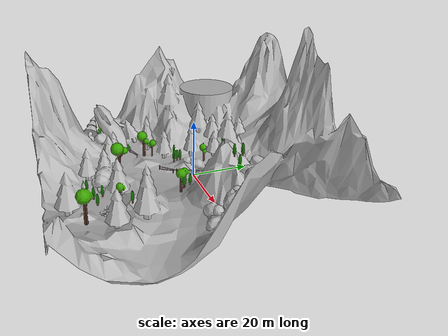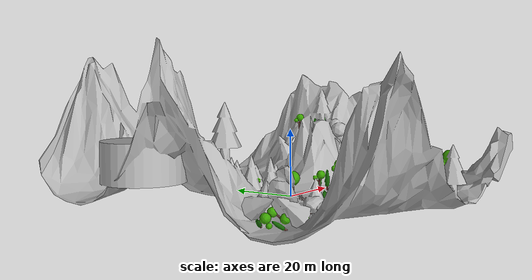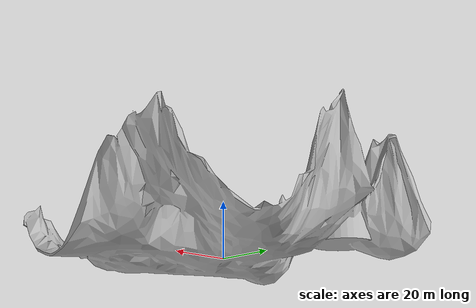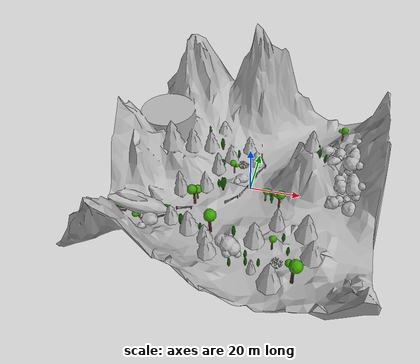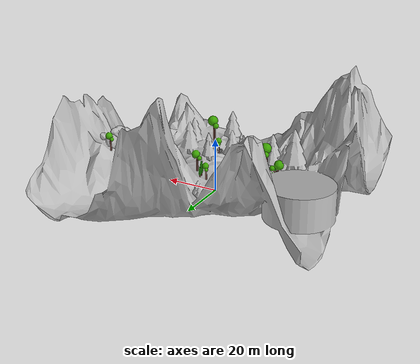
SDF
<sdf version="1.7">
<model name="mountain_forest_environment">
    <static>true</static>
    <link name="mountain_forest_environment">
        <pose>0 0 0 0 0 0</pose>
        <collision name="collision">
            <geometry>
                <mesh>
                    <uri>model://mountain_forest_environment/meshes/mountain_forest_environment.dae</uri>
                </mesh>
            </geometry>
        </collision>
        <visual name="visual">
            <geometry>
                <mesh>
                    <uri>model://mountain_forest_environment/meshes/mountain_forest_environment.dae</uri>
                </mesh>
            </geometry>
        </visual>
    </link>
</model>
</sdf>
